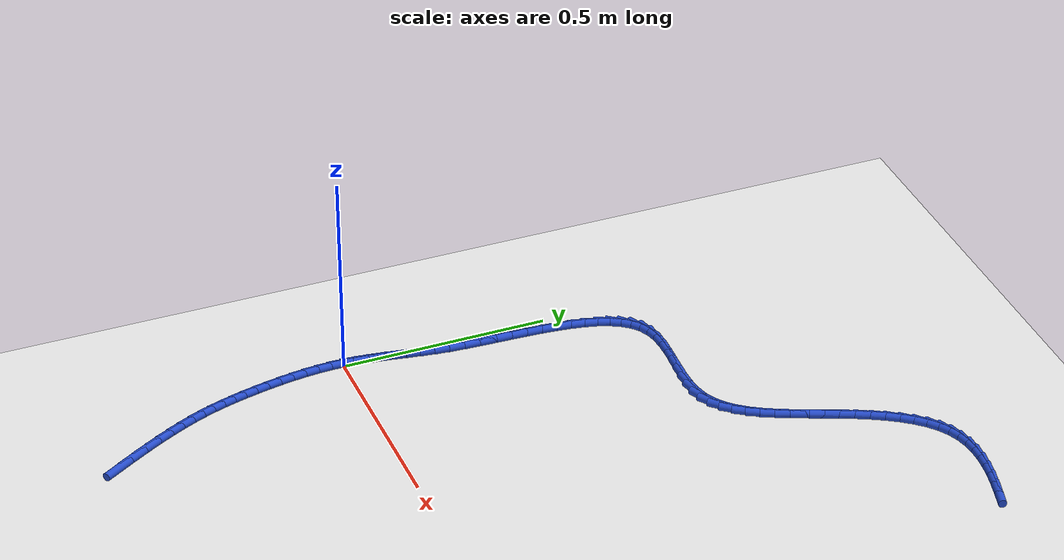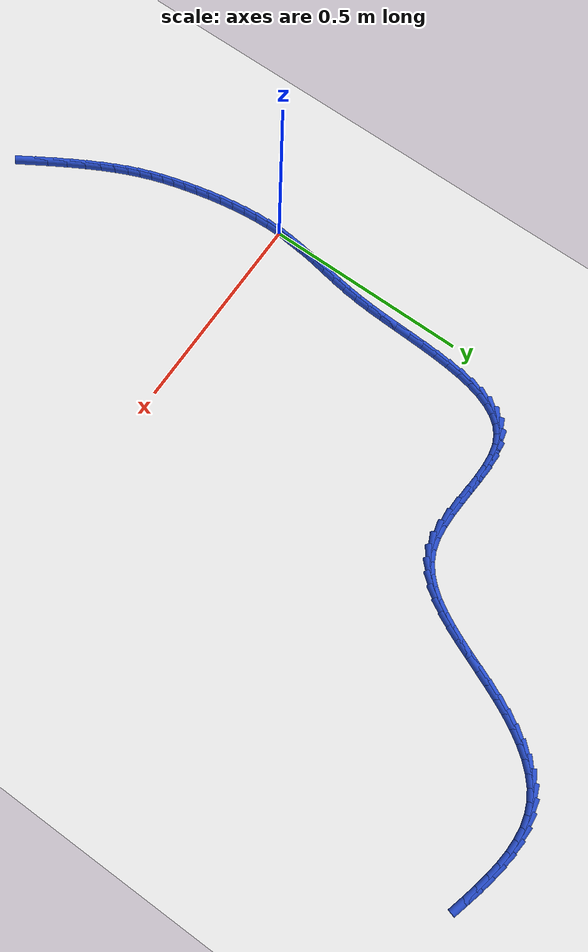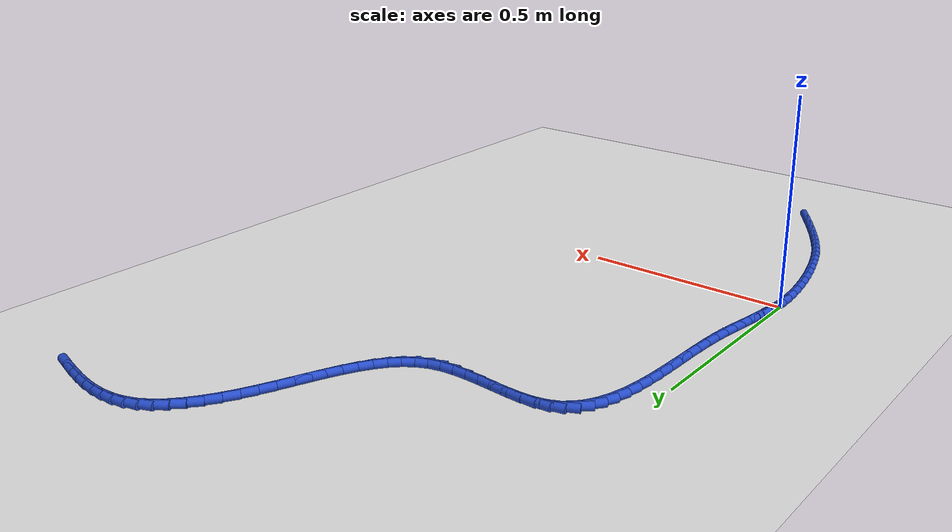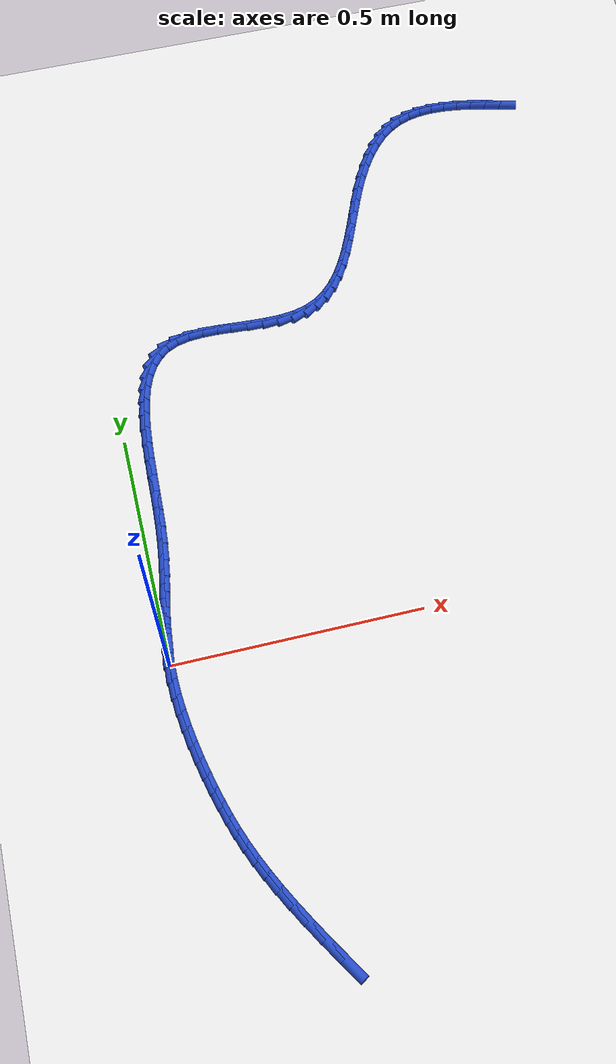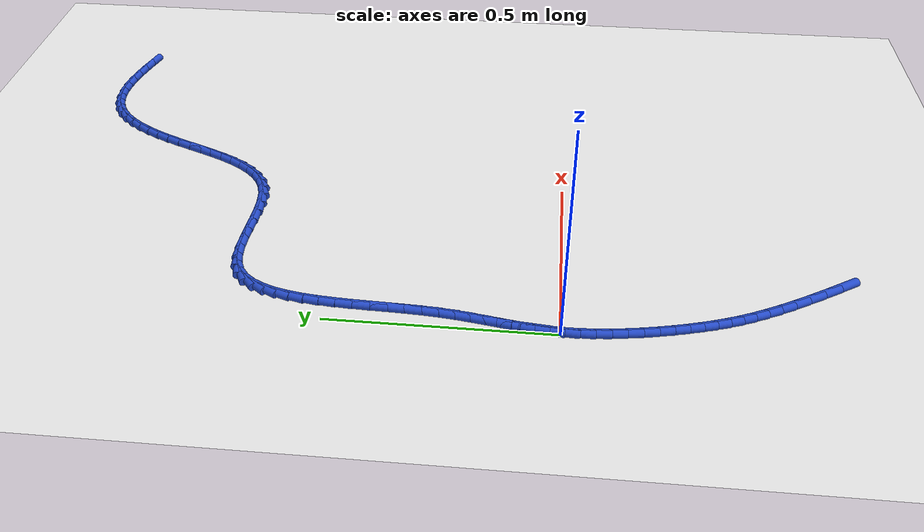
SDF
<sdf version="1.6">
 <world name="default">
  <model name="ground_plane">
   <static>1</static>
   <link name="link">
    <collision name="collision">
     <geometry><plane><normal>0 0 1</normal><size>100 100</size></plane></geometry>
     <surface><friction><ode><mu>100</mu><mu2>50</mu2></ode></friction></surface>
    </collision>
    <visual name="visual">
     <cast_shadows>0</cast_shadows>
     <geometry><plane><normal>0 0 1</normal><size>100 100</size></plane></geometry>
     <material>
      <script><uri>file://media/materials/scripts/gazebo.material</uri><name>Gazebo/WhiteGlow</name></script>
     </material>
    </visual>
   </link>
  </model>
  <model name="line">
   <link name="link_0">
    <pose>1.5612511283791264e-17 2.7755575615628914e-17 0.01 0 1.57 1.5110017083149907</pose>
    <collision name="collision">
     <geometry><cylinder><radius>0.01</radius><length>0.08</length></cylinder></geometry>
    </collision>
    <visual name="visual">
     <material>
      <script><name>Gazebo/Blue</name><uri>file://media/materials/scripts/gazebo.material</uri></script>
     </material>
     <geometry><cylinder><radius>0.01</radius><length>0.08</length></cylinder></geometry>
    </visual>
   </link>
   <link name="link_1">
    <pose>0.0018584598975174933 0.03104367092401081 0.01 0 1.57 1.46522671874329</pose>
    <collision name="collision">
     <geometry><cylinder><radius>0.01</radius><length>0.08</length></cylinder></geometry>
    </collision>
    <visual name="visual">
     <material>
      <script><name>Gazebo/Blue</name><uri>file://media/materials/scripts/gazebo.material</uri></script>
     </material>
     <geometry><cylinder><radius>0.01</radius><length>0.08</length></cylinder></geometry>
    </visual>
   </link>
   <link name="link_2">
    <pose>0.00509891587528294 0.06162452513026185 0.01 0 1.57 1.4315644325832069</pose>
    <collision name="collision">
     <geometry><cylinder><radius>0.01</radius><length>0.08</length></cylinder></geometry>
    </collision>
    <visual name="visual">
     <material>
      <script><name>Gazebo/Blue</name><uri>file://media/materials/scripts/gazebo.material</uri></script>
     </material>
     <geometry><cylinder><radius>0.01</radius><length>0.08</length></cylinder></geometry>
    </visual>
   </link>
   <link name="link_3">
    <pose>0.009362554380947023 0.09204896133760183 0.01 0 1.57 1.4109899988886758</pose>
    <collision name="collision">
     <geometry><cylinder><radius>0.01</radius><length>0.08</length></cylinder></geometry>
    </collision>
    <visual name="visual">
     <material>
      <script><name>Gazebo/Blue</name><uri>file://media/materials/scripts/gazebo.material</uri></script>
     </material>
     <geometry><cylinder><radius>0.01</radius><length>0.08</length></cylinder></geometry>
    </visual>
   </link>
   <link name="link_4">
    <pose>0.014290561862160413 0.12262337826487943 0.01 0 1.57 1.4037116771254312</pose>
    <collision name="collision">
     <geometry><cylinder><radius>0.01</radius><length>0.08</length></cylinder></geometry>
    </collision>
    <visual name="visual">
     <material>
      <script><name>Gazebo/Blue</name><uri>file://media/materials/scripts/gazebo.material</uri></script>
     </material>
     <geometry><cylinder><radius>0.01</radius><length>0.08</length></cylinder></geometry>
    </visual>
   </link>
   <link name="link_5">
    <pose>0.019524124766573784 0.1536541746309433 0.01 0 1.57 1.40928006939681</pose>
    <collision name="collision">
     <geometry><cylinder><radius>0.01</radius><length>0.08</length></cylinder></geometry>
    </collision>
    <visual name="visual">
     <material>
      <script><name>Gazebo/Blue</name><uri>file://media/materials/scripts/gazebo.material</uri></script>
     </material>
     <geometry><cylinder><radius>0.01</radius><length>0.08</length></cylinder></geometry>
    </visual>
   </link>
   <link name="link_6">
    <pose>0.024704429541837818 0.18544774915464227 0.01 0 1.57 1.426706499615199</pose>
    <collision name="collision">
     <geometry><cylinder><radius>0.01</radius><length>0.08</length></cylinder></geometry>
    </collision>
    <visual name="visual">
     <material>
      <script><name>Gazebo/Blue</name><uri>file://media/materials/scripts/gazebo.material</uri></script>
     </material>
     <geometry><cylinder><radius>0.01</radius><length>0.08</length></cylinder></geometry>
    </visual>
   </link>
   <link name="link_7">
    <pose>0.02947266263560318 0.21831050055482487 0.01 0 1.57 1.4545718183914698</pose>
    <collision name="collision">
     <geometry><cylinder><radius>0.01</radius><length>0.08</length></cylinder></geometry>
    </collision>
    <visual name="visual">
     <material>
      <script><name>Gazebo/Blue</name><uri>file://media/materials/scripts/gazebo.material</uri></script>
     </material>
     <geometry><cylinder><radius>0.01</radius><length>0.08</length></cylinder></geometry>
    </visual>
   </link>
   <link name="link_8">
    <pose>0.03347001049552052 0.25254882755033975 0.01 0 1.57 1.4891182606874604</pose>
    <collision name="collision">
     <geometry><cylinder><radius>0.01</radius><length>0.08</length></cylinder></geometry>
    </collision>
    <visual name="visual">
     <material>
      <script><name>Gazebo/Blue</name><uri>file://media/materials/scripts/gazebo.material</uri></script>
     </material>
     <geometry><cylinder><radius>0.01</radius><length>0.08</length></cylinder></geometry>
    </visual>
   </link>
   <link name="link_9">
    <pose>0.03640450453529545 0.288396462525026 0.01 0 1.57 1.5159817689432553</pose>
    <collision name="collision">
     <geometry><cylinder><radius>0.01</radius><length>0.08</length></cylinder></geometry>
    </collision>
    <visual name="visual">
     <material>
      <script><name>Gazebo/Blue</name><uri>file://media/materials/scripts/gazebo.material</uri></script>
     </material>
     <geometry><cylinder><radius>0.01</radius><length>0.08</length></cylinder></geometry>
    </visual>
   </link>
   <link name="link_10">
    <pose>0.03844508182791089 0.3255860930268645 0.01 0 1.57 1.5311385465173644</pose>
    <collision name="collision">
     <geometry><cylinder><radius>0.01</radius><length>0.08</length></cylinder></geometry>
    </collision>
    <visual name="visual">
     <material>
      <script><name>Gazebo/Blue</name><uri>file://media/materials/scripts/gazebo.material</uri></script>
     </material>
     <geometry><cylinder><radius>0.01</radius><length>0.08</length></cylinder></geometry>
    </visual>
   </link>
   <link name="link_11">
    <pose>0.03995497484480821 0.3636391904816875 0.01 0 1.57 1.535867308461193</pose>
    <collision name="collision">
     <geometry><cylinder><radius>0.01</radius><length>0.08</length></cylinder></geometry>
    </collision>
    <visual name="visual">
     <material>
      <script><name>Gazebo/Blue</name><uri>file://media/materials/scripts/gazebo.material</uri></script>
     </material>
     <geometry><cylinder><radius>0.01</radius><length>0.08</length></cylinder></geometry>
    </visual>
   </link>
   <link name="link_12">
    <pose>0.04129809807063453 0.40207648490721637 0.01 0 1.57 1.5306463270078754</pose>
    <collision name="collision">
     <geometry><cylinder><radius>0.01</radius><length>0.08</length></cylinder></geometry>
    </collision>
    <visual name="visual">
     <material>
      <script><name>Gazebo/Blue</name><uri>file://media/materials/scripts/gazebo.material</uri></script>
     </material>
     <geometry><cylinder><radius>0.01</radius><length>0.08</length></cylinder></geometry>
    </visual>
   </link>
   <link name="link_13">
    <pose>0.04283836599003689 0.4404187063211712 0.01 0 1.57 1.5152156871650295</pose>
    <collision name="collision">
     <geometry><cylinder><radius>0.01</radius><length>0.08</length></cylinder></geometry>
    </collision>
    <visual name="visual">
     <material>
      <script><name>Gazebo/Blue</name><uri>file://media/materials/scripts/gazebo.material</uri></script>
     </material>
     <geometry><cylinder><radius>0.01</radius><length>0.08</length></cylinder></geometry>
    </visual>
   </link>
   <link name="link_14">
    <pose>0.0449396930876624 0.4781865847412729 0.01 0 1.57 1.4885537839730054</pose>
    <collision name="collision">
     <geometry><cylinder><radius>0.01</radius><length>0.08</length></cylinder></geometry>
    </collision>
    <visual name="visual">
     <material>
      <script><name>Gazebo/Blue</name><uri>file://media/materials/scripts/gazebo.material</uri></script>
     </material>
     <geometry><cylinder><radius>0.01</radius><length>0.08</length></cylinder></geometry>
    </visual>
   </link>
   <link name="link_15">
    <pose>0.04796599384815814 0.5149008501852421 0.01 0 1.57 1.4487504574559473</pose>
    <collision name="collision">
     <geometry><cylinder><radius>0.01</radius><length>0.08</length></cylinder></geometry>
    </collision>
    <visual name="visual">
     <material>
      <script><name>Gazebo/Blue</name><uri>file://media/materials/scripts/gazebo.material</uri></script>
     </material>
     <geometry><cylinder><radius>0.01</radius><length>0.08</length></cylinder></geometry>
    </visual>
   </link>
   <link name="link_16">
    <pose>0.05228118275617119 0.5500822326707997 0.01 0 1.57 1.392775512622296</pose>
    <collision name="collision">
     <geometry><cylinder><radius>0.01</radius><length>0.08</length></cylinder></geometry>
    </collision>
    <visual name="visual">
     <material>
      <script><name>Gazebo/Blue</name><uri>file://media/materials/scripts/gazebo.material</uri></script>
     </material>
     <geometry><cylinder><radius>0.01</radius><length>0.08</length></cylinder></geometry>
    </visual>
   </link>
   <link name="link_17">
    <pose>0.05824917429634862 0.5832514622156658 0.01 0 1.57 1.316169399740432</pose>
    <collision name="collision">
     <geometry><cylinder><radius>0.01</radius><length>0.08</length></cylinder></geometry>
    </collision>
    <visual name="visual">
     <material>
      <script><name>Gazebo/Blue</name><uri>file://media/materials/scripts/gazebo.material</uri></script>
     </material>
     <geometry><cylinder><radius>0.01</radius><length>0.08</length></cylinder></geometry>
    </visual>
   </link>
   <link name="link_18">
    <pose>0.06623388295333751 0.6139292688375618 0.01 0 1.57 1.2128114794268512</pose>
    <collision name="collision">
     <geometry><cylinder><radius>0.01</radius><length>0.08</length></cylinder></geometry>
    </collision>
    <visual name="visual">
     <material>
      <script><name>Gazebo/Blue</name><uri>file://media/materials/scripts/gazebo.material</uri></script>
     </material>
     <geometry><cylinder><radius>0.01</radius><length>0.08</length></cylinder></geometry>
    </visual>
   </link>
   <link name="link_19">
    <pose>0.07659922321178494 0.6416363825542076 0.01 0 1.57 1.075311240369714</pose>
    <collision name="collision">
     <geometry><cylinder><radius>0.01</radius><length>0.08</length></cylinder></geometry>
    </collision>
    <visual name="visual">
     <material>
      <script><name>Gazebo/Blue</name><uri>file://media/materials/scripts/gazebo.material</uri></script>
     </material>
     <geometry><cylinder><radius>0.01</radius><length>0.08</length></cylinder></geometry>
    </visual>
   </link>
   <link name="link_20">
    <pose>0.08970910955633804 0.6658935333833244 0.01 0 1.57 0.8973762253620209</pose>
    <collision name="collision">
     <geometry><cylinder><radius>0.01</radius><length>0.08</length></cylinder></geometry>
    </collision>
    <visual name="visual">
     <material>
      <script><name>Gazebo/Blue</name><uri>file://media/materials/scripts/gazebo.material</uri></script>
     </material>
     <geometry><cylinder><radius>0.01</radius><length>0.08</length></cylinder></geometry>
    </visual>
   </link>
   <link name="link_21">
    <pose>0.10592745647164384 0.686221451342633 0.01 0 1.57 0.6798860341663364</pose>
    <collision name="collision">
     <geometry><cylinder><radius>0.01</radius><length>0.08</length></cylinder></geometry>
    </collision>
    <visual name="visual">
     <material>
      <script><name>Gazebo/Blue</name><uri>file://media/materials/scripts/gazebo.material</uri></script>
     </material>
     <geometry><cylinder><radius>0.01</radius><length>0.08</length></cylinder></geometry>
    </visual>
   </link>
   <link name="link_22">
    <pose>0.12561817844234943 0.7021408664498535 0.01 0 1.57 0.43867159131562394</pose>
    <collision name="collision">
     <geometry><cylinder><radius>0.01</radius><length>0.08</length></cylinder></geometry>
    </collision>
    <visual name="visual">
     <material>
      <script><name>Gazebo/Blue</name><uri>file://media/materials/scripts/gazebo.material</uri></script>
     </material>
     <geometry><cylinder><radius>0.01</radius><length>0.08</length></cylinder></geometry>
    </visual>
   </link>
   <link name="link_23">
    <pose>0.14914177529060485 0.7131771668245567 0.01 0 1.57 0.222887089520099</pose>
    <collision name="collision">
     <geometry><cylinder><radius>0.01</radius><length>0.08</length></cylinder></geometry>
    </collision>
    <visual name="visual">
     <material>
      <script><name>Gazebo/Blue</name><uri>file://media/materials/scripts/gazebo.material</uri></script>
     </material>
     <geometry><cylinder><radius>0.01</radius><length>0.08</length></cylinder></geometry>
    </visual>
   </link>
   <link name="link_24">
    <pose>0.1764793422462872 0.7193733042502569 0.01 0 1.57 0.07810402708663557</pose>
    <collision name="collision">
     <geometry><cylinder><radius>0.01</radius><length>0.08</length></cylinder></geometry>
    </collision>
    <visual name="visual">
     <material>
      <script><name>Gazebo/Blue</name><uri>file://media/materials/scripts/gazebo.material</uri></script>
     </material>
     <geometry><cylinder><radius>0.01</radius><length>0.08</length></cylinder></geometry>
    </visual>
   </link>
   <link name="link_25">
    <pose>0.20689261320327226 0.721753545171237 0.01 0 1.57 -0.009240623474178342</pose>
    <collision name="collision">
     <geometry><cylinder><radius>0.01</radius><length>0.08</length></cylinder></geometry>
    </collision>
    <visual name="visual">
     <material>
      <script><name>Gazebo/Blue</name><uri>file://media/materials/scripts/gazebo.material</uri></script>
     </material>
     <geometry><cylinder><radius>0.01</radius><length>0.08</length></cylinder></geometry>
    </visual>
   </link>
   <link name="link_26">
    <pose>0.23956306295168178 0.7214516412532275 0.01 0 1.57 -0.05419331402597103</pose>
    <collision name="collision">
     <geometry><cylinder><radius>0.01</radius><length>0.08</length></cylinder></geometry>
    </collision>
    <visual name="visual">
     <material>
      <script><name>Gazebo/Blue</name><uri>file://media/materials/scripts/gazebo.material</uri></script>
     </material>
     <geometry><cylinder><radius>0.01</radius><length>0.08</length></cylinder></geometry>
    </visual>
   </link>
   <link name="link_27">
    <pose>0.2736721662816378 0.7196013441619609 0.01 0 1.57 -0.06512483948747246</pose>
    <collision name="collision">
     <geometry><cylinder><radius>0.01</radius><length>0.08</length></cylinder></geometry>
    </collision>
    <visual name="visual">
     <material>
      <script><name>Gazebo/Blue</name><uri>file://media/materials/scripts/gazebo.material</uri></script>
     </material>
     <geometry><cylinder><radius>0.01</radius><length>0.08</length></cylinder></geometry>
    </visual>
   </link>
   <link name="link_28">
    <pose>0.3084013979832621 0.7173364055631677 0.01 0 1.57 -0.044736741747783436</pose>
    <collision name="collision">
     <geometry><cylinder><radius>0.01</radius><length>0.08</length></cylinder></geometry>
    </collision>
    <visual name="visual">
     <material>
      <script><name>Gazebo/Blue</name><uri>file://media/materials/scripts/gazebo.material</uri></script>
     </material>
     <geometry><cylinder><radius>0.01</radius><length>0.08</length></cylinder></geometry>
    </visual>
   </link>
   <link name="link_29">
    <pose>0.34293223284667657 0.7157905771225797 0.01 0 1.57 0.009161114538576076</pose>
    <collision name="collision">
     <geometry><cylinder><radius>0.01</radius><length>0.08</length></cylinder></geometry>
    </collision>
    <visual name="visual">
     <material>
      <script><name>Gazebo/Blue</name><uri>file://media/materials/scripts/gazebo.material</uri></script>
     </material>
     <geometry><cylinder><radius>0.01</radius><length>0.08</length></cylinder></geometry>
    </visual>
   </link>
   <link name="link_30">
    <pose>0.376446145662003 0.716097610505928 0.01 0 1.57 0.1035989304440568</pose>
    <collision name="collision">
     <geometry><cylinder><radius>0.01</radius><length>0.08</length></cylinder></geometry>
    </collision>
    <visual name="visual">
     <material>
      <script><name>Gazebo/Blue</name><uri>file://media/materials/scripts/gazebo.material</uri></script>
     </material>
     <geometry><cylinder><radius>0.01</radius><length>0.08</length></cylinder></geometry>
    </visual>
   </link>
   <link name="link_31">
    <pose>0.4081246112193635 0.7193912573789447 0.01 0 1.57 0.2500420094478546</pose>
    <collision name="collision">
     <geometry><cylinder><radius>0.01</radius><length>0.08</length></cylinder></geometry>
    </collision>
    <visual name="visual">
     <material>
      <script><name>Gazebo/Blue</name><uri>file://media/materials/scripts/gazebo.material</uri></script>
     </material>
     <geometry><cylinder><radius>0.01</radius><length>0.08</length></cylinder></geometry>
    </visual>
   </link>
   <link name="link_32">
    <pose>0.43715005025850145 0.7268039676046116 0.01 0 1.57 0.44155622837616293</pose>
    <collision name="collision">
     <geometry><cylinder><radius>0.01</radius><length>0.08</length></cylinder></geometry>
    </collision>
    <visual name="visual">
     <material>
      <script><name>Gazebo/Blue</name><uri>file://media/materials/scripts/gazebo.material</uri></script>
     </material>
     <geometry><cylinder><radius>0.01</radius><length>0.08</length></cylinder></geometry>
    </visual>
   </link>
   <link name="link_33">
    <pose>0.463021231771554 0.7390328369686503 0.01 0 1.57 0.6276039159924935</pose>
    <collision name="collision">
     <geometry><cylinder><radius>0.01</radius><length>0.08</length></cylinder></geometry>
    </collision>
    <visual name="visual">
     <material>
      <script><name>Gazebo/Blue</name><uri>file://media/materials/scripts/gazebo.material</uri></script>
     </material>
     <geometry><cylinder><radius>0.01</radius><length>0.08</length></cylinder></geometry>
    </visual>
   </link>
   <link name="link_34">
    <pose>0.48601047485320986 0.7557104123346278 0.01 0 1.57 0.7879160891610285</pose>
    <collision name="collision">
     <geometry><cylinder><radius>0.01</radius><length>0.08</length></cylinder></geometry>
    </collision>
    <visual name="visual">
     <material>
      <script><name>Gazebo/Blue</name><uri>file://media/materials/scripts/gazebo.material</uri></script>
     </material>
     <geometry><cylinder><radius>0.01</radius><length>0.08</length></cylinder></geometry>
    </visual>
   </link>
   <link name="link_35">
    <pose>0.5065061377457422 0.7763095491006426 0.01 0 1.57 0.91683480049951</pose>
    <collision name="collision">
     <geometry><cylinder><radius>0.01</radius><length>0.08</length></cylinder></geometry>
    </collision>
    <visual name="visual">
     <material>
      <script><name>Gazebo/Blue</name><uri>file://media/materials/scripts/gazebo.material</uri></script>
     </material>
     <geometry><cylinder><radius>0.01</radius><length>0.08</length></cylinder></geometry>
    </visual>
   </link>
   <link name="link_36">
    <pose>0.5248965786914249 0.8003031026647943 0.01 0 1.57 1.015266564539035</pose>
    <collision name="collision">
     <geometry><cylinder><radius>0.01</radius><length>0.08</length></cylinder></geometry>
    </collision>
    <visual name="visual">
     <material>
      <script><name>Gazebo/Blue</name><uri>file://media/materials/scripts/gazebo.material</uri></script>
     </material>
     <geometry><cylinder><radius>0.01</radius><length>0.08</length></cylinder></geometry>
    </visual>
   </link>
   <link name="link_37">
    <pose>0.5415701559325311 0.827163928425182 0.01 0 1.57 1.0869582249928893</pose>
    <collision name="collision">
     <geometry><cylinder><radius>0.01</radius><length>0.08</length></cylinder></geometry>
    </collision>
    <visual name="visual">
     <material>
      <script><name>Gazebo/Blue</name><uri>file://media/materials/scripts/gazebo.material</uri></script>
     </material>
     <geometry><cylinder><radius>0.01</radius><length>0.08</length></cylinder></geometry>
    </visual>
   </link>
   <link name="link_38">
    <pose>0.5569152277113344 0.8563648817799047 0.01 0 1.57 1.13597765855752</pose>
    <collision name="collision">
     <geometry><cylinder><radius>0.01</radius><length>0.08</length></cylinder></geometry>
    </collision>
    <visual name="visual">
     <material>
      <script><name>Gazebo/Blue</name><uri>file://media/materials/scripts/gazebo.material</uri></script>
     </material>
     <geometry><cylinder><radius>0.01</radius><length>0.08</length></cylinder></geometry>
    </visual>
   </link>
   <link name="link_39">
    <pose>0.5713201522701081 0.8873788181270611 0.01 0 1.57 1.1656332058274104</pose>
    <collision name="collision">
     <geometry><cylinder><radius>0.01</radius><length>0.08</length></cylinder></geometry>
    </collision>
    <visual name="visual">
     <material>
      <script><name>Gazebo/Blue</name><uri>file://media/materials/scripts/gazebo.material</uri></script>
     </material>
     <geometry><cylinder><radius>0.01</radius><length>0.08</length></cylinder></geometry>
    </visual>
   </link>
   <link name="link_40">
    <pose>0.5851732878511255 0.9196785928647508 0.01 0 1.57 1.1781891962383126</pose>
    <collision name="collision">
     <geometry><cylinder><radius>0.01</radius><length>0.08</length></cylinder></geometry>
    </collision>
    <visual name="visual">
     <material>
      <script><name>Gazebo/Blue</name><uri>file://media/materials/scripts/gazebo.material</uri></script>
     </material>
     <geometry><cylinder><radius>0.01</radius><length>0.08</length></cylinder></geometry>
    </visual>
   </link>
   <link name="link_41">
    <pose>0.5988629926966605 0.952737061391073 0.01 0 1.57 1.1748848666998863</pose>
    <collision name="collision">
     <geometry><cylinder><radius>0.01</radius><length>0.08</length></cylinder></geometry>
    </collision>
    <visual name="visual">
     <material>
      <script><name>Gazebo/Blue</name><uri>file://media/materials/scripts/gazebo.material</uri></script>
     </material>
     <geometry><cylinder><radius>0.01</radius><length>0.08</length></cylinder></geometry>
    </visual>
   </link>
   <link name="link_42">
    <pose>0.6127776250489861 0.9860270791041266 0.01 0 1.57 1.1560261072629114</pose>
    <collision name="collision">
     <geometry><cylinder><radius>0.01</radius><length>0.08</length></cylinder></geometry>
    </collision>
    <visual name="visual">
     <material>
      <script><name>Gazebo/Blue</name><uri>file://media/materials/scripts/gazebo.material</uri></script>
     </material>
     <geometry><cylinder><radius>0.01</radius><length>0.08</length></cylinder></geometry>
    </visual>
   </link>
   <link name="link_43">
    <pose>0.627305543150376 1.0190215014020108 0.01 0 1.57 1.1210769184691094</pose>
    <collision name="collision">
     <geometry><cylinder><radius>0.01</radius><length>0.08</length></cylinder></geometry>
    </collision>
    <visual name="visual">
     <material>
      <script><name>Gazebo/Blue</name><uri>file://media/materials/scripts/gazebo.material</uri></script>
     </material>
     <geometry><cylinder><radius>0.01</radius><length>0.08</length></cylinder></geometry>
    </visual>
   </link>
   <link name="link_44">
    <pose>0.6428351052431033 1.051193183682824 0.01 0 1.57 1.0695364520800479</pose>
    <collision name="collision">
     <geometry><cylinder><radius>0.01</radius><length>0.08</length></cylinder></geometry>
    </collision>
    <visual name="visual">
     <material>
      <script><name>Gazebo/Blue</name><uri>file://media/materials/scripts/gazebo.material</uri></script>
     </material>
     <geometry><cylinder><radius>0.01</radius><length>0.08</length></cylinder></geometry>
    </visual>
   </link>
   <link name="link_45">
    <pose>0.6597184352597053 1.0820055819536332 0.01 0 1.57 1.0039581526693369</pose>
    <collision name="collision">
     <geometry><cylinder><radius>0.01</radius><length>0.08</length></cylinder></geometry>
    </collision>
    <visual name="visual">
     <material>
      <script><name>Gazebo/Blue</name><uri>file://media/materials/scripts/gazebo.material</uri></script>
     </material>
     <geometry><cylinder><radius>0.01</radius><length>0.08</length></cylinder></geometry>
    </visual>
   </link>
   <link name="link_46">
    <pose>0.678088056257983 1.1108651864752859 0.01 0 1.57 0.9227545385872424</pose>
    <collision name="collision">
     <geometry><cylinder><radius>0.01</radius><length>0.08</length></cylinder></geometry>
    </collision>
    <visual name="visual">
     <material>
      <script><name>Gazebo/Blue</name><uri>file://media/materials/scripts/gazebo.material</uri></script>
     </material>
     <geometry><cylinder><radius>0.01</radius><length>0.08</length></cylinder></geometry>
    </visual>
   </link>
   <link name="link_47">
    <pose>0.6979941963617103 1.1371571397233247 0.01 0 1.57 0.8216286395048461</pose>
    <collision name="collision">
     <geometry><cylinder><radius>0.01</radius><length>0.08</length></cylinder></geometry>
    </collision>
    <visual name="visual">
     <material>
      <script><name>Gazebo/Blue</name><uri>file://media/materials/scripts/gazebo.material</uri></script>
     </material>
     <geometry><cylinder><radius>0.01</radius><length>0.08</length></cylinder></geometry>
    </visual>
   </link>
   <link name="link_48">
    <pose>0.7194869386581428 1.1602665465499726 0.01 0 1.57 0.6956928824648573</pose>
    <collision name="collision">
     <geometry><cylinder><radius>0.01</radius><length>0.08</length></cylinder></geometry>
    </collision>
    <visual name="visual">
     <material>
      <script><name>Gazebo/Blue</name><uri>file://media/materials/scripts/gazebo.material</uri></script>
     </material>
     <geometry><cylinder><radius>0.01</radius><length>0.08</length></cylinder></geometry>
    </visual>
   </link>
   <link name="link_49">
    <pose>0.7426163662345364 1.1795785118074549 0.01 0 1.57 0.5410460445097256</pose>
    <collision name="collision">
     <geometry><cylinder><radius>0.01</radius><length>0.08</length></cylinder></geometry>
    </collision>
    <visual name="visual">
     <material>
      <script><name>Gazebo/Blue</name><uri>file://media/materials/scripts/gazebo.material</uri></script>
     </material>
     <geometry><cylinder><radius>0.01</radius><length>0.08</length></cylinder></geometry>
    </visual>
   </link>
   <link name="link_50">
    <pose>0.7674305798383994 1.194488192119707 0.01 0 1.57 0.372577959626737</pose>
    <collision name="collision">
     <geometry><cylinder><radius>0.01</radius><length>0.08</length></cylinder></geometry>
    </collision>
    <visual name="visual">
     <material>
      <script><name>Gazebo/Blue</name><uri>file://media/materials/scripts/gazebo.material</uri></script>
     </material>
     <geometry><cylinder><radius>0.01</radius><length>0.08</length></cylinder></geometry>
    </visual>
   </link>
   <link name="link_51">
    <pose>0.7938910917605801 1.2048298047710282 0.01 0 1.57 0.21855425497329292</pose>
    <collision name="collision">
     <geometry><cylinder><radius>0.01</radius><length>0.08</length></cylinder></geometry>
    </collision>
    <visual name="visual">
     <material>
      <script><name>Gazebo/Blue</name><uri>file://media/materials/scripts/gazebo.material</uri></script>
     </material>
     <geometry><cylinder><radius>0.01</radius><length>0.08</length></cylinder></geometry>
    </visual>
   </link>
   <link name="link_52">
    <pose>0.8218410895627285 1.2110375515672762 0.01 0 1.57 0.08693254520243908</pose>
    <collision name="collision">
     <geometry><cylinder><radius>0.01</radius><length>0.08</length></cylinder></geometry>
    </collision>
    <visual name="visual">
     <material>
      <script><name>Gazebo/Blue</name><uri>file://media/materials/scripts/gazebo.material</uri></script>
     </material>
     <geometry><cylinder><radius>0.01</radius><length>0.08</length></cylinder></geometry>
    </visual>
   </link>
   <link name="link_53">
    <pose>0.8511152365582317 1.2135888578826068 0.01 0 1.57 -0.02062302875035609</pose>
    <collision name="collision">
     <geometry><cylinder><radius>0.01</radius><length>0.08</length></cylinder></geometry>
    </collision>
    <visual name="visual">
     <material>
      <script><name>Gazebo/Blue</name><uri>file://media/materials/scripts/gazebo.material</uri></script>
     </material>
     <geometry><cylinder><radius>0.01</radius><length>0.08</length></cylinder></geometry>
    </visual>
   </link>
   <link name="link_54">
    <pose>0.8815481960604791 1.2129611490911782 0.01 0 1.57 -0.10554574863978079</pose>
    <collision name="collision">
     <geometry><cylinder><radius>0.01</radius><length>0.08</length></cylinder></geometry>
    </collision>
    <visual name="visual">
     <material>
      <script><name>Gazebo/Blue</name><uri>file://media/materials/scripts/gazebo.material</uri></script>
     </material>
     <geometry><cylinder><radius>0.01</radius><length>0.08</length></cylinder></geometry>
    </visual>
   </link>
   <link name="link_55">
    <pose>0.9129746313828582 1.2096318505671468 0.01 0 1.57 -0.17050425192611332</pose>
    <collision name="collision">
     <geometry><cylinder><radius>0.01</radius><length>0.08</length></cylinder></geometry>
    </collision>
    <visual name="visual">
     <material>
      <script><name>Gazebo/Blue</name><uri>file://media/materials/scripts/gazebo.material</uri></script>
     </material>
     <geometry><cylinder><radius>0.01</radius><length>0.08</length></cylinder></geometry>
    </visual>
   </link>
   <link name="link_56">
    <pose>0.9452292058387579 1.2040783876846692 0.01 0 1.57 -0.2182412988082091</pose>
    <collision name="collision">
     <geometry><cylinder><radius>0.01</radius><length>0.08</length></cylinder></geometry>
    </collision>
    <visual name="visual">
     <material>
      <script><name>Gazebo/Blue</name><uri>file://media/materials/scripts/gazebo.material</uri></script>
     </material>
     <geometry><cylinder><radius>0.01</radius><length>0.08</length></cylinder></geometry>
    </visual>
   </link>
   <link name="link_57">
    <pose>0.9781465827415662 1.1967781858179025 0.01 0 1.57 -0.2510478145431154</pose>
    <collision name="collision">
     <geometry><cylinder><radius>0.01</radius><length>0.08</length></cylinder></geometry>
    </collision>
    <visual name="visual">
     <material>
      <script><name>Gazebo/Blue</name><uri>file://media/materials/scripts/gazebo.material</uri></script>
     </material>
     <geometry><cylinder><radius>0.01</radius><length>0.08</length></cylinder></geometry>
    </visual>
   </link>
   <link name="link_58">
    <pose>1.0115614254046716 1.1882086703410042 0.01 0 1.57 -0.2705959279661808</pose>
    <collision name="collision">
     <geometry><cylinder><radius>0.01</radius><length>0.08</length></cylinder></geometry>
    </collision>
    <visual name="visual">
     <material>
      <script><name>Gazebo/Blue</name><uri>file://media/materials/scripts/gazebo.material</uri></script>
     </material>
     <geometry><cylinder><radius>0.01</radius><length>0.08</length></cylinder></geometry>
    </visual>
   </link>
   <link name="link_221">
    <pose>0.19605367130680842 -0.6032301896243055 0.01 0 1.57 -1.0151830759371385</pose>
    <collision name="collision">
     <geometry><cylinder><radius>0.01</radius><length>0.08</length></cylinder></geometry>
    </collision>
    <visual name="visual">
     <material>
      <script><name>Gazebo/Blue</name><uri>file://media/materials/scripts/gazebo.material</uri></script>
     </material>
     <geometry><cylinder><radius>0.01</radius><length>0.08</length></cylinder></geometry>
    </visual>
   </link>
   <link name="link_222">
    <pose>0.17077205511432286 -0.5625095592925304 0.01 0 1.57 -1.0325974171312968</pose>
    <collision name="collision">
     <geometry><cylinder><radius>0.01</radius><length>0.08</length></cylinder></geometry>
    </collision>
    <visual name="visual">
     <material>
      <script><name>Gazebo/Blue</name><uri>file://media/materials/scripts/gazebo.material</uri></script>
     </material>
     <geometry><cylinder><radius>0.01</radius><length>0.08</length></cylinder></geometry>
    </visual>
   </link>
   <link name="link_223">
    <pose>0.1475885485091709 -0.5236751747702526 0.01 0 1.57 -1.0528424140729096</pose>
    <collision name="collision">
     <geometry><cylinder><radius>0.01</radius><length>0.08</length></cylinder></geometry>
    </collision>
    <visual name="visual">
     <material>
      <script><name>Gazebo/Blue</name><uri>file://media/materials/scripts/gazebo.material</uri></script>
     </material>
     <geometry><cylinder><radius>0.01</radius><length>0.08</length></cylinder></geometry>
    </visual>
   </link>
   <link name="link_224">
    <pose>0.12691798592709652 -0.48740136677177376 0.01 0 1.57 -1.077373388020288</pose>
    <collision name="collision">
     <geometry><cylinder><radius>0.01</radius><length>0.08</length></cylinder></geometry>
    </collision>
    <visual name="visual">
     <material>
      <script><name>Gazebo/Blue</name><uri>file://media/materials/scripts/gazebo.material</uri></script>
     </material>
     <geometry><cylinder><radius>0.01</radius><length>0.08</length></cylinder></geometry>
    </visual>
   </link>
   <link name="link_225">
    <pose>0.10889773543099593 -0.45389358377959305 0.01 0 1.57 -1.1064539971700285</pose>
    <collision name="collision">
     <geometry><cylinder><radius>0.01</radius><length>0.08</length></cylinder></geometry>
    </collision>
    <visual name="visual">
     <material>
      <script><name>Gazebo/Blue</name><uri>file://media/materials/scripts/gazebo.material</uri></script>
     </material>
     <geometry><cylinder><radius>0.01</radius><length>0.08</length></cylinder></geometry>
    </visual>
   </link>
   <link name="link_226">
    <pose>0.09326078561972523 -0.42267392535847187 0.01 0 1.57 -1.1396734427350268</pose>
    <collision name="collision">
     <geometry><cylinder><radius>0.01</radius><length>0.08</length></cylinder></geometry>
    </collision>
    <visual name="visual">
     <material>
      <script><name>Gazebo/Blue</name><uri>file://media/materials/scripts/gazebo.material</uri></script>
     </material>
     <geometry><cylinder><radius>0.01</radius><length>0.08</length></cylinder></geometry>
    </visual>
   </link>
   <link name="link_227">
    <pose>0.07970817857241554 -0.3932105055926494 0.01 0 1.57 -1.1759767153195813</pose>
    <collision name="collision">
     <geometry><cylinder><radius>0.01</radius><length>0.08</length></cylinder></geometry>
    </collision>
    <visual name="visual">
     <material>
      <script><name>Gazebo/Blue</name><uri>file://media/materials/scripts/gazebo.material</uri></script>
     </material>
     <geometry><cylinder><radius>0.01</radius><length>0.08</length></cylinder></geometry>
    </visual>
   </link>
   <link name="link_228">
    <pose>0.06794095636819786 -0.3649714385663645 0.01 0 1.57 -1.2135917960315044</pose>
    <collision name="collision">
     <geometry><cylinder><radius>0.01</radius><length>0.08</length></cylinder></geometry>
    </collision>
    <visual name="visual">
     <material>
      <script><name>Gazebo/Blue</name><uri>file://media/materials/scripts/gazebo.material</uri></script>
     </material>
     <geometry><cylinder><radius>0.01</radius><length>0.08</length></cylinder></geometry>
    </visual>
   </link>
   <link name="link_229">
    <pose>0.05766016108620324 -0.337424838363856 0.01 0 1.57 -1.2502078413992945</pose>
    <collision name="collision">
     <geometry><cylinder><radius>0.01</radius><length>0.08</length></cylinder></geometry>
    </collision>
    <visual name="visual">
     <material>
      <script><name>Gazebo/Blue</name><uri>file://media/materials/scripts/gazebo.material</uri></script>
     </material>
     <geometry><cylinder><radius>0.01</radius><length>0.08</length></cylinder></geometry>
    </visual>
   </link>
   <link name="link_230">
    <pose>0.048566834805562537 -0.31003881906936226 0.01 0 1.57 -1.2833893803435796</pose>
    <collision name="collision">
     <geometry><cylinder><radius>0.01</radius><length>0.08</length></cylinder></geometry>
    </collision>
    <visual name="visual">
     <material>
      <script><name>Gazebo/Blue</name><uri>file://media/materials/scripts/gazebo.material</uri></script>
     </material>
     <geometry><cylinder><radius>0.01</radius><length>0.08</length></cylinder></geometry>
    </visual>
   </link>
   <link name="link_231">
    <pose>0.04036201960540727 -0.2822814947671237 0.01 0 1.57 -1.3110993182313793</pose>
    <collision name="collision">
     <geometry><cylinder><radius>0.01</radius><length>0.08</length></cylinder></geometry>
    </collision>
    <visual name="visual">
     <material>
      <script><name>Gazebo/Blue</name><uri>file://media/materials/scripts/gazebo.material</uri></script>
     </material>
     <geometry><cylinder><radius>0.01</radius><length>0.08</length></cylinder></geometry>
    </visual>
   </link>
   <link name="link_232">
    <pose>0.032747200869133 -0.2536217248723609 0.01 0 1.57 -1.3344414093780161</pose>
    <collision name="collision">
     <geometry><cylinder><radius>0.01</radius><length>0.08</length></cylinder></geometry>
    </collision>
    <visual name="visual">
     <material>
      <script><name>Gazebo/Blue</name><uri>file://media/materials/scripts/gazebo.material</uri></script>
     </material>
     <geometry><cylinder><radius>0.01</radius><length>0.08</length></cylinder></geometry>
    </visual>
   </link>
   <link name="link_233">
    <pose>0.02555015475873529 -0.22374070248970246 0.01 0 1.57 -1.3588756857903992</pose>
    <collision name="collision">
     <geometry><cylinder><radius>0.01</radius><length>0.08</length></cylinder></geometry>
    </collision>
    <visual name="visual">
     <material>
      <script><name>Gazebo/Blue</name><uri>file://media/materials/scripts/gazebo.material</uri></script>
     </material>
     <geometry><cylinder><radius>0.01</radius><length>0.08</length></cylinder></geometry>
    </visual>
   </link>
   <link name="link_234">
    <pose>0.0188982431960011 -0.192823316641846 0.01 0 1.57 -1.3856616728107671</pose>
    <collision name="collision">
     <geometry><cylinder><radius>0.01</radius><length>0.08</length></cylinder></geometry>
    </collision>
    <visual name="visual">
     <material>
      <script><name>Gazebo/Blue</name><uri>file://media/materials/scripts/gazebo.material</uri></script>
     </material>
     <geometry><cylinder><radius>0.01</radius><length>0.08</length></cylinder></geometry>
    </visual>
   </link>
   <link name="link_235">
    <pose>0.012962276907349544 -0.16112750717190677 0.01 0 1.57 -1.415332553864449</pose>
    <collision name="collision">
     <geometry><cylinder><radius>0.01</radius><length>0.08</length></cylinder></geometry>
    </collision>
    <visual name="visual">
     <material>
      <script><name>Gazebo/Blue</name><uri>file://media/materials/scripts/gazebo.material</uri></script>
     </material>
     <geometry><cylinder><radius>0.01</radius><length>0.08</length></cylinder></geometry>
    </visual>
   </link>
   <link name="link_236">
    <pose>0.00791306661919973 -0.128911213923 0.01 0 1.57 -1.4485097238581144</pose>
    <collision name="collision">
     <geometry><cylinder><radius>0.01</radius><length>0.08</length></cylinder></geometry>
    </collision>
    <visual name="visual">
     <material>
      <script><name>Gazebo/Blue</name><uri>file://media/materials/scripts/gazebo.material</uri></script>
     </material>
     <geometry><cylinder><radius>0.01</radius><length>0.08</length></cylinder></geometry>
    </visual>
   </link>
   <link name="link_237">
    <pose>0.003921423057970759 -0.09643237673824083 0.01 0 1.57 -1.4859337185620194</pose>
    <collision name="collision">
     <geometry><cylinder><radius>0.01</radius><length>0.08</length></cylinder></geometry>
    </collision>
    <visual name="visual">
     <material>
      <script><name>Gazebo/Blue</name><uri>file://media/materials/scripts/gazebo.material</uri></script>
     </material>
     <geometry><cylinder><radius>0.01</radius><length>0.08</length></cylinder></geometry>
    </visual>
   </link>
   <link name="link_238">
    <pose>0.0011581569500816891 -0.06394893546074362 0.01 0 1.57 -1.5284984715973386</pose>
    <collision name="collision">
     <geometry><cylinder><radius>0.01</radius><length>0.08</length></cylinder></geometry>
    </collision>
    <visual name="visual">
     <material>
      <script><name>Gazebo/Blue</name><uri>file://media/materials/scripts/gazebo.material</uri></script>
     </material>
     <geometry><cylinder><radius>0.01</radius><length>0.08</length></cylinder></geometry>
    </visual>
   </link>
   <link name="link_239">
    <pose>-0.0002059209780482284 -0.031718829933625285 0.01 0 1.57 1.5643043444119664</pose>
    <collision name="collision">
     <geometry><cylinder><radius>0.01</radius><length>0.08</length></cylinder></geometry>
    </collision>
    <visual name="visual">
     <material>
      <script><name>Gazebo/Blue</name><uri>file://media/materials/scripts/gazebo.material</uri></script>
     </material>
     <geometry><cylinder><radius>0.01</radius><length>0.08</length></cylinder></geometry>
    </visual>
   </link>
   <link name="link_240">
    <pose>2.6020852139652106e-17 -1.734723475976807e-16 0.01 0 1.57 1.507979087707156</pose>
    <collision name="collision">
     <geometry><cylinder><radius>0.01</radius><length>0.08</length></cylinder></geometry>
    </collision>
    <visual name="visual">
     <material>
      <script><name>Gazebo/Blue</name><uri>file://media/materials/scripts/gazebo.material</uri></script>
     </material>
     <geometry><cylinder><radius>0.01</radius><length>0.08</length></cylinder></geometry>
    </visual>
   </link>
   <link name="link_241">
    <pose>0.001946730610645559 0.03094961449701651 0.01 0 1.57 1.442558946685947</pose>
    <collision name="collision">
     <geometry><cylinder><radius>0.01</radius><length>0.08</length></cylinder></geometry>
    </collision>
    <visual name="visual">
     <material>
      <script><name>Gazebo/Blue</name><uri>file://media/materials/scripts/gazebo.material</uri></script>
     </material>
     <geometry><cylinder><radius>0.01</radius><length>0.08</length></cylinder></geometry>
    </visual>
   </link>
   <link name="link_242">
    <pose>0.005805081580307476 0.060872073714309596 0.01 0 1.57 1.475718593032402</pose>
    <collision name="collision">
     <geometry><cylinder><radius>0.01</radius><length>0.08</length></cylinder></geometry>
    </collision>
    <visual name="visual">
     <material>
      <script><name>Gazebo/Blue</name><uri>file://media/materials/scripts/gazebo.material</uri></script>
     </material>
     <geometry><cylinder><radius>0.01</radius><length>0.08</length></cylinder></geometry>
    </visual>
   </link>
  </model>
 </world>
</sdf>
